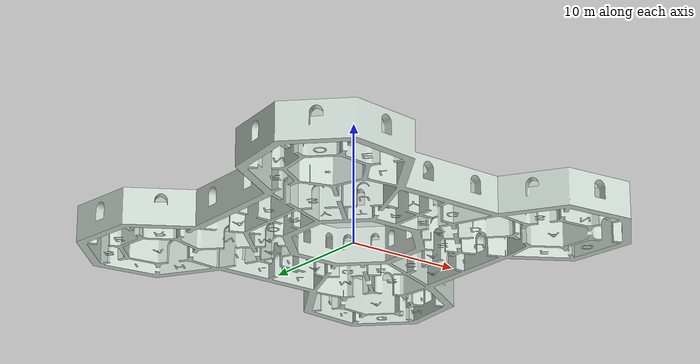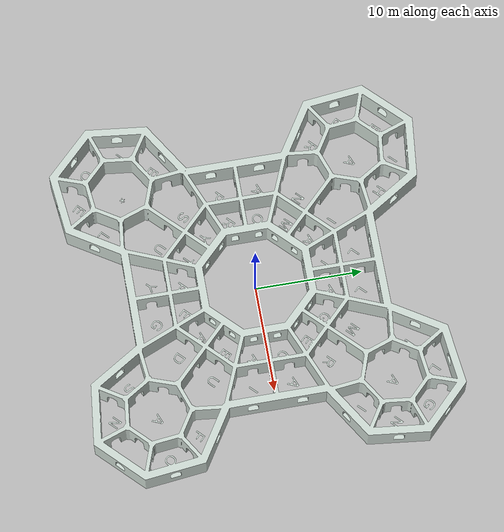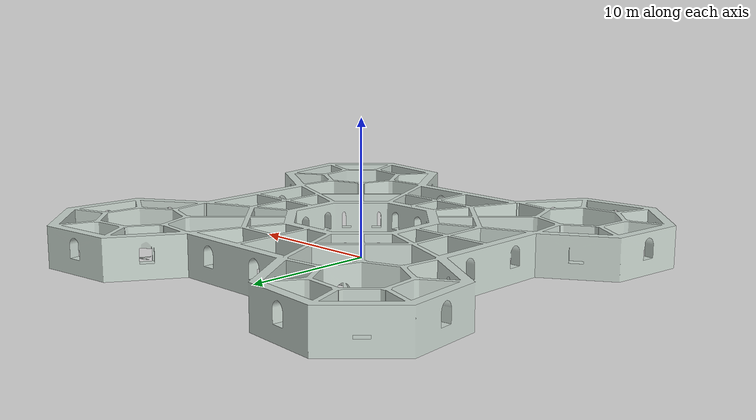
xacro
<?xml version="1.0" ?>
<robot name="aedificium_world"
       xmlns:xacro="http://www.ros.org/wiki/xacro">

  <!-- Gazebo/Moveit "world" with lots of bookshelves...

       (C) 2021 fnh, hendrich@informatik.uni-hamburg.de
  -->

  <xacro:include filename="$(find tams_books_world)/urdf/book_cube.xacro" />
  <xacro:include filename="$(find tams_books_world)/urdf/bookshelf.xacro" />
  <xacro:include filename="$(find tams_books_world)/urdf/aedificium.xacro" />

  <link name="world" />

  <xacro:aedificium name="aedificium" parent="world" >
    <origin xyz="0 0 0" rpy="0 0 0.7071" />
  </xacro:aedificium>

</robot>

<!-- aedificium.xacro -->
<robot name="bookshelf"
       xmlns:xacro="http://www.ros.org/wiki/xacro">

  <!-- The Aedificium library floor. -->
  <xacro:macro name="aedificium" params="name parent *origin">
    <link name="${name}" >
      <inertial>
        <origin xyz="0 0 0" rpy="0 0 0" />
        <mass value="100000" />
        <inertia ixx="1" ixy="0" ixz="0" iyy="1" iyz="0" izz="1" />
      </inertial>
      <collision>
        <origin xyz="0 0 0" rpy="0 0 0" />
        <geometry>
          <mesh filename="package://tams_books_world/meshes/aedificium/aedificium.stl" scale="0.001 0.001 0.001 " />
        </geometry>
      </collision>
      <visual>
        <origin xyz="0 0 0" rpy="0 0 0" />
        <material name="${name}/unused_material" >
          <color rgba="0.8 0.85 0.82 1.0" />
        </material>
        <geometry>
          <mesh filename="package://tams_books_world/meshes/aedificium/aedificium.stl" scale="0.001 0.001 0.001 " />
        </geometry>
      </visual>
    </link>

    <gazebo reference="${name}">
       <!-- material/texture definition for Gazebo -->
       <turnGravityOff>false</turnGravityOff>
       <selfCollide>false</selfCollide>
       <mu1>1</mu1>
       <mu2>1</mu2>
       <kp>1000000.0</kp>
       <kd>10.0</kd>
     </gazebo>

    <joint name="${name}_mount_joint" type="fixed">
      <parent link="${parent}" />
      <child link="${name}" />
      <origin xyz="0 0 0" rpy="0 0 0" />
    </joint>

  </xacro:macro>

</robot>
